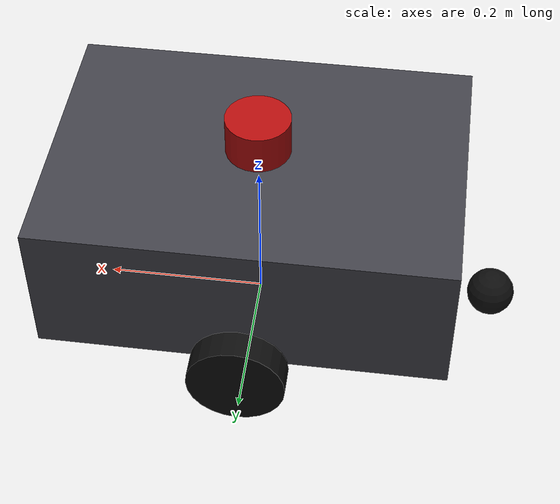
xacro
<?xml version="1.0"?>
<robot name="amr_robot" xmlns:xacro="http://www.ros.org/wiki/xacro">

  <xacro:arg name="robot_name" default="amr_1"/>
  <xacro:property name="ns" value="$(arg robot_name)"/>

  <!-- Per-robot chassis color: passed from launch for visual distinction. -->
  <xacro:arg name="chassis_r" default="0.25"/>
  <xacro:arg name="chassis_g" default="0.25"/>
  <xacro:arg name="chassis_b" default="0.28"/>
  <xacro:arg name="chassis_a" default="1.0"/>

  <xacro:property name="chassis_len" value="0.5"/>
  <xacro:property name="chassis_wid" value="0.35"/>
  <xacro:property name="chassis_hgt" value="0.18"/>
  <xacro:property name="wheel_radius" value="0.06"/>
  <xacro:property name="wheel_width" value="0.035"/>
  <xacro:property name="wheel_separation" value="0.40"/>
  <xacro:property name="caster_radius" value="0.03"/>

  <!-- ─── Materials ──────────────────────────────────────────────────── -->
  <material name="chassis_color">
    <color rgba="$(arg chassis_r) $(arg chassis_g) $(arg chassis_b) $(arg chassis_a)"/>
  </material>
  <material name="wheel_black">
    <color rgba="0.05 0.05 0.05 1.0"/>
  </material>
  <material name="lidar_red">
    <color rgba="0.7 0.05 0.05 1.0"/>
  </material>

  <!-- ─── Base link ──────────────────────────────────────────────────── -->
  <link name="base_footprint"/>

  <joint name="base_joint" type="fixed">
    <parent link="base_footprint"/>
    <child link="base_link"/>
    <origin xyz="0 0 ${wheel_radius}" rpy="0 0 0"/>
  </joint>

  <link name="base_link">
    <visual>
      <geometry><box size="${chassis_len} ${chassis_wid} ${chassis_hgt}"/></geometry>
      <origin xyz="0 0 ${chassis_hgt/2}" rpy="0 0 0"/>
      <material name="chassis_color"/>
    </visual>
    <collision>
      <geometry><box size="${chassis_len} ${chassis_wid} ${chassis_hgt}"/></geometry>
      <origin xyz="0 0 ${chassis_hgt/2}" rpy="0 0 0"/>
    </collision>
    <inertial>
      <mass value="8.0"/>
      <inertia ixx="0.08" ixy="0.0" ixz="0.0" iyy="0.12" iyz="0.0" izz="0.15"/>
    </inertial>
  </link>

  <!-- Gazebo material override (SDF visual material, not URDF material) -->
  <gazebo reference="base_link">
    <material>Gazebo/DarkGrey</material>
    <visual>
      <material>
        <ambient>$(arg chassis_r) $(arg chassis_g) $(arg chassis_b) $(arg chassis_a)</ambient>
        <diffuse>$(arg chassis_r) $(arg chassis_g) $(arg chassis_b) $(arg chassis_a)</diffuse>
      </material>
    </visual>
  </gazebo>

  <!-- ─── Drive wheels ───────────────────────────────────────────────── -->
  <xacro:macro name="drive_wheel" params="side y_offset">
    <link name="${side}_wheel_link">
      <visual>
        <origin xyz="0 0 0" rpy="1.5708 0 0"/>
        <geometry><cylinder radius="${wheel_radius}" length="${wheel_width}"/></geometry>
        <material name="wheel_black"/>
      </visual>
      <collision>
        <origin xyz="0 0 0" rpy="1.5708 0 0"/>
        <geometry><cylinder radius="${wheel_radius}" length="${wheel_width}"/></geometry>
      </collision>
      <inertial>
        <mass value="0.6"/>
        <inertia ixx="0.001" ixy="0" ixz="0" iyy="0.001" iyz="0" izz="0.001"/>
      </inertial>
    </link>
    <joint name="${side}_wheel_joint" type="continuous">
      <parent link="base_link"/>
      <child link="${side}_wheel_link"/>
      <origin xyz="0 ${y_offset} 0" rpy="0 0 0"/>
      <axis xyz="0 1 0"/>
    </joint>
  </xacro:macro>

  <xacro:drive_wheel side="left"  y_offset="${wheel_separation/2}"/>
  <xacro:drive_wheel side="right" y_offset="-${wheel_separation/2}"/>

  <!-- ─── Caster wheels ──────────────────────────────────────────────── -->
  <xacro:macro name="caster" params="prefix x_offset">
    <link name="${prefix}_caster_link">
      <visual>
        <geometry><sphere radius="${caster_radius}"/></geometry>
        <material name="wheel_black"/>
      </visual>
      <collision>
        <geometry><sphere radius="${caster_radius}"/></geometry>
        <surface>
          <friction>
            <ode><mu>0.0</mu><mu2>0.0</mu2></ode>
          </friction>
        </surface>
      </collision>
      <inertial>
        <mass value="0.15"/>
        <inertia ixx="0.0002" ixy="0" ixz="0" iyy="0.0002" iyz="0" izz="0.0002"/>
      </inertial>
    </link>
    <joint name="${prefix}_caster_joint" type="fixed">
      <parent link="base_link"/>
      <child link="${prefix}_caster_link"/>
      <origin xyz="${x_offset} 0 -${wheel_radius - caster_radius}" rpy="0 0 0"/>
    </joint>
  </xacro:macro>

  <xacro:caster prefix="front" x_offset="${chassis_len/2 - 0.05}"/>
  <xacro:caster prefix="rear"  x_offset="-${chassis_len/2 + 0.05}"/>

  <!-- ─── Lidar ──────────────────────────────────────────────────────── -->
  <link name="lidar_link">
    <visual>
      <geometry><cylinder radius="0.04" length="0.05"/></geometry>
      <material name="lidar_red"/>
    </visual>
    <collision>
      <geometry><cylinder radius="0.04" length="0.05"/></geometry>
    </collision>
    <inertial>
      <mass value="0.15"/>
      <inertia ixx="0.0001" ixy="0" ixz="0" iyy="0.0001" iyz="0" izz="0.0001"/>
    </inertial>
  </link>
  <joint name="lidar_joint" type="fixed">
    <parent link="base_link"/>
    <child link="lidar_link"/>
    <origin xyz="0 0 ${chassis_hgt + 0.03}" rpy="0 0 0"/>
  </joint>

  <!-- ─── Gazebo diff-drive controller ───────────────────────────────── -->
  <gazebo>
    <plugin name="diff_drive" filename="libgazebo_ros_diff_drive.so">
      <ros>
        <namespace>${ns}</namespace>
        <remapping>odom:=odom</remapping>
        <remapping>/tf:=/${ns}/tf</remapping>
        <remapping>/tf_static:=/${ns}/tf_static</remapping>
      </ros>
      <left_joint>left_wheel_joint</left_joint>
      <right_joint>right_wheel_joint</right_joint>
      <wheel_separation>${wheel_separation}</wheel_separation>
      <wheel_diameter>${wheel_radius * 2}</wheel_diameter>
      <max_wheel_torque>20</max_wheel_torque>
      <max_wheel_acceleration>2.0</max_wheel_acceleration>
      <command_topic>cmd_vel</command_topic>
      <odometry_topic>odom</odometry_topic>
      <odometry_frame>odom</odometry_frame>
      <robot_base_frame>base_footprint</robot_base_frame>
      <publish_odom>true</publish_odom>
      <publish_odom_tf>true</publish_odom_tf>
      <publish_wheel_tf>false</publish_wheel_tf>
      <update_rate>50.0</update_rate>
    </plugin>
  </gazebo>

  <!-- ─── 2D lidar sensor ────────────────────────────────────────────── -->
  <gazebo reference="lidar_link">
    <sensor name="lidar" type="ray">
      <pose>0 0 0 0 0 0</pose>
      <visualize>false</visualize>
      <update_rate>10</update_rate>
      <ray>
        <scan>
          <horizontal>
            <samples>360</samples>
            <resolution>1.0</resolution>
            <min_angle>-3.14159</min_angle>
            <max_angle>3.14159</max_angle>
          </horizontal>
        </scan>
        <range>
          <min>0.12</min>
          <max>10.0</max>
          <resolution>0.01</resolution>
        </range>
        <noise>
          <type>gaussian</type>
          <mean>0.0</mean>
          <stddev>0.01</stddev>
        </noise>
      </ray>
      <plugin name="lidar_plugin" filename="libgazebo_ros_ray_sensor.so">
        <ros>
          <namespace>${ns}</namespace>
          <remapping>~/out:=scan</remapping>
        </ros>
        <output_type>sensor_msgs/LaserScan</output_type>
        <frame_name>lidar_link</frame_name>
      </plugin>
    </sensor>
  </gazebo>

</robot>
